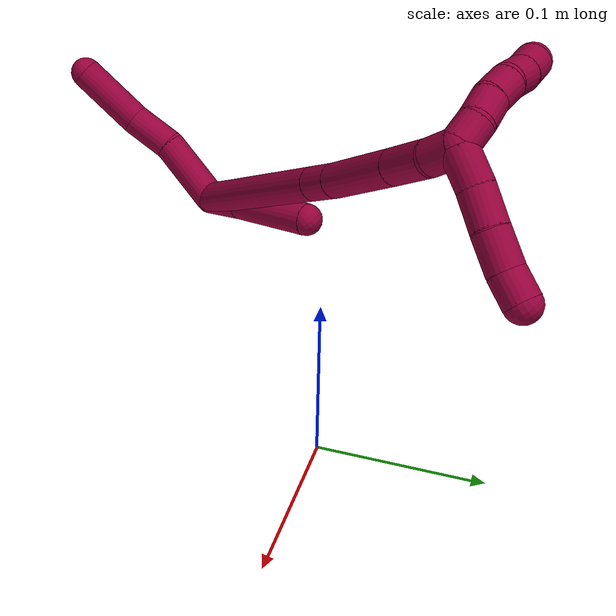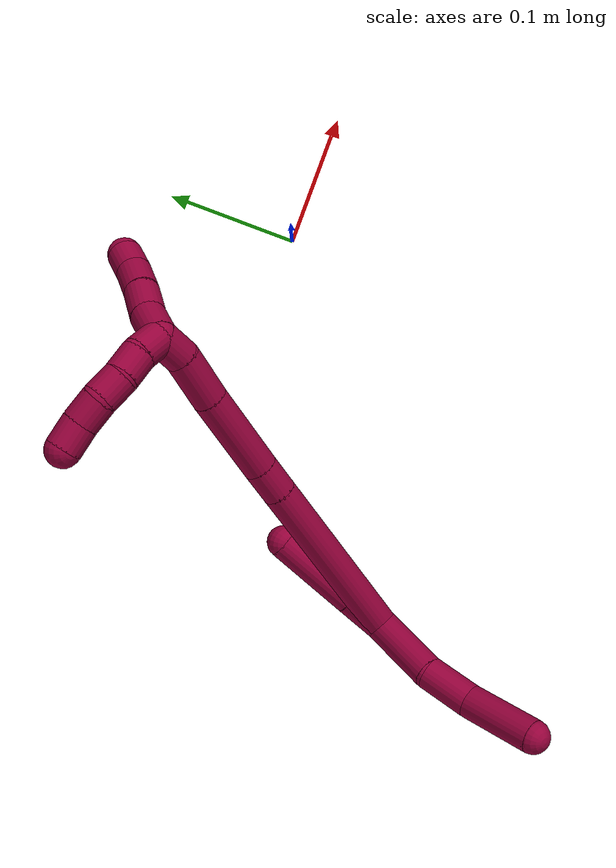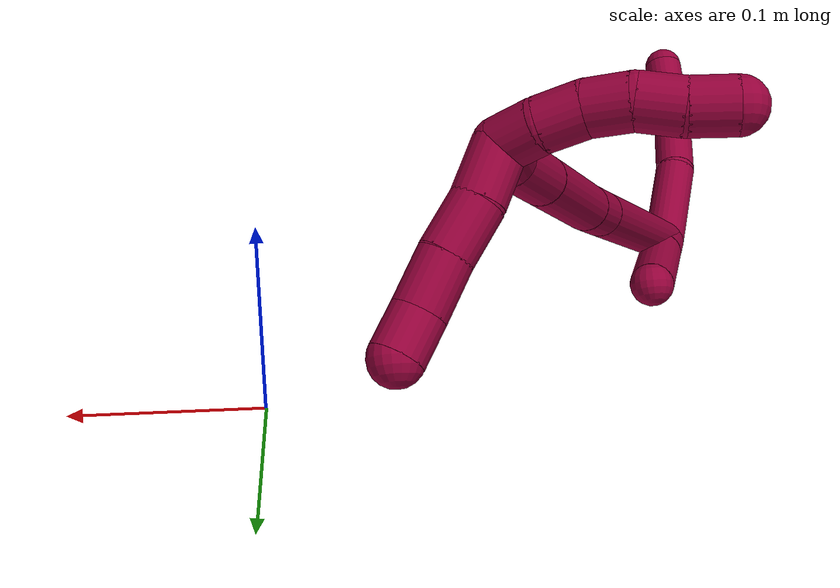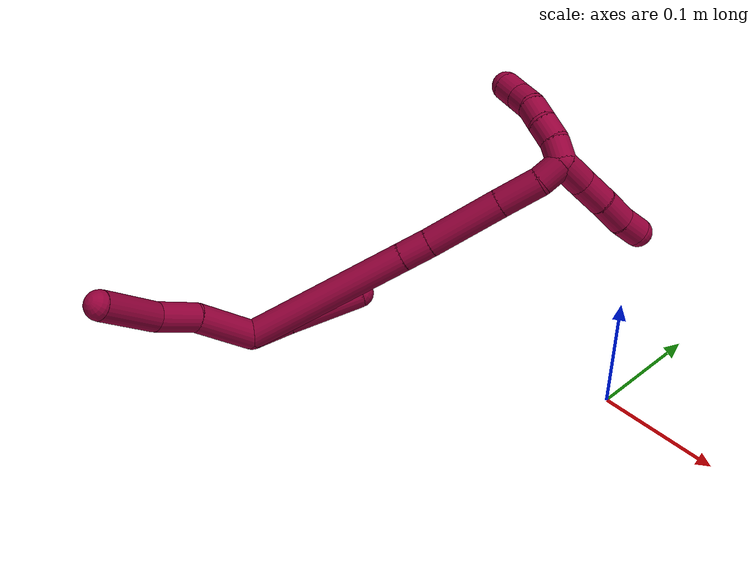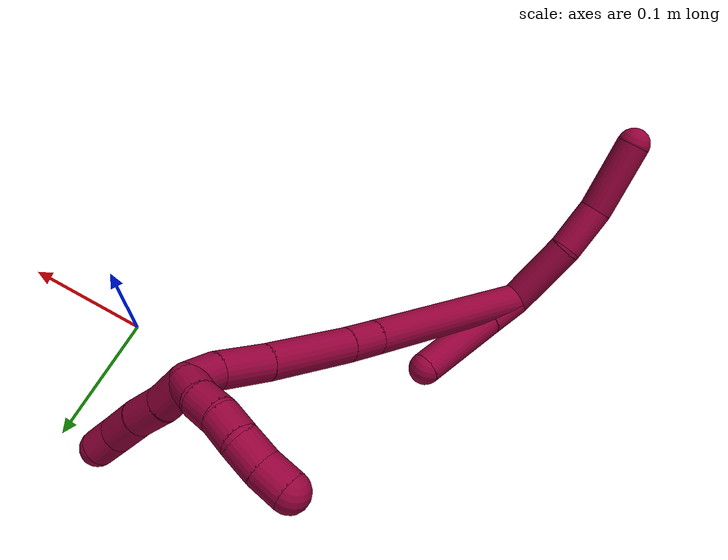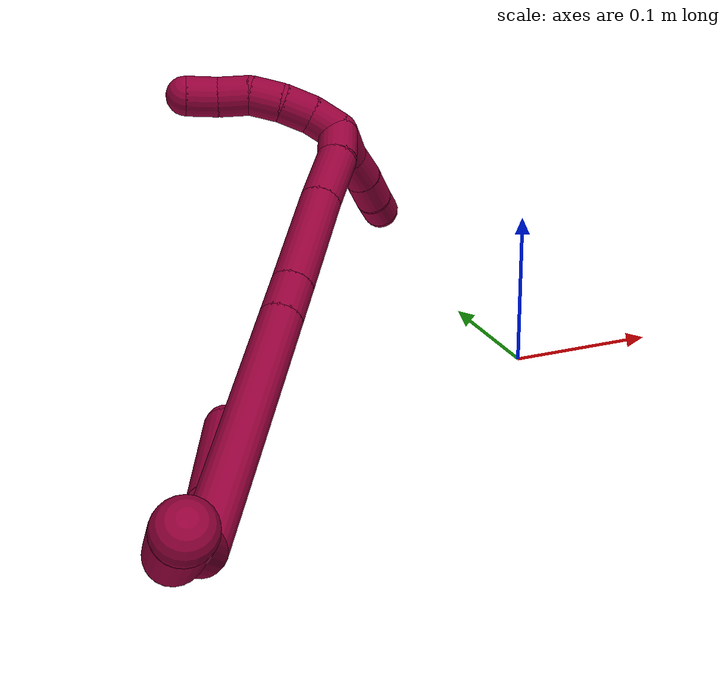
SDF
<sdf version="1.7">
 <world name="default">
  <model name="8">
   <static>0</static>
   <link name="8">
    <collision name="collision-cylinder-e_1_2_8">
     <pose>-0.007567 -0.007407 0.026267 0.274851 -0.27046 -0.037629</pose>
     <geometry><cylinder><radius>0.0125</radius><length>0.056641</length></cylinder></geometry>
     <surface>
      <friction><ode><mu>1.16</mu><mu2>1.16</mu2><slip1>0</slip1><slip2>0</slip2></ode></friction>
      <contact><ode><kp>1e+06</kp><kd>1</kd><max_vel>0</max_vel><min_depth>0.001</min_depth></ode></contact>
     </surface>
    </collision>
    <visual name="visual-cylinder-e_1_2_8">
     <pose>-0.007567 -0.007407 0.026267 0.274851 -0.27046 -0.037629</pose>
     <geometry><cylinder><radius>0.0125</radius><length>0.056641</length></cylinder></geometry>
     <material><ambient>0.584314 0 0.227451 1</ambient></material>
    </visual>
    <collision name="collision-cylinder-e_2_8_9">
     <pose>-0.017256 -0.023341 0.06897 0.478572 -0.114136 -0.027873</pose>
     <geometry><cylinder><radius>0.0125</radius><length>0.037276</length></cylinder></geometry>
     <surface>
      <friction><ode><mu>1.16</mu><mu2>1.16</mu2><slip1>0</slip1><slip2>0</slip2></ode></friction>
      <contact><ode><kp>1e+06</kp><kd>1</kd><max_vel>0</max_vel><min_depth>0.001</min_depth></ode></contact>
     </surface>
    </collision>
    <visual name="visual-cylinder-e_2_8_9">
     <pose>-0.017256 -0.023341 0.06897 0.478572 -0.114136 -0.027873</pose>
     <geometry><cylinder><radius>0.0125</radius><length>0.037276</length></cylinder></geometry>
     <material><ambient>0.584314 0 0.227451 1</ambient></material>
    </visual>
    <collision name="collision-cylinder-e_3_9_6">
     <pose>-0.019877 -0.038018 0.112761 0.221155 -0.01777 -0.001973</pose>
     <geometry><cylinder><radius>0.0125</radius><length>0.056083</length></cylinder></geometry>
     <surface>
      <friction><ode><mu>1.16</mu><mu2>1.16</mu2><slip1>0</slip1><slip2>0</slip2></ode></friction>
      <contact><ode><kp>1e+06</kp><kd>1</kd><max_vel>0</max_vel><min_depth>0.001</min_depth></ode></contact>
     </surface>
    </collision>
    <visual name="visual-cylinder-e_3_9_6">
     <pose>-0.019877 -0.038018 0.112761 0.221155 -0.01777 -0.001973</pose>
     <geometry><cylinder><radius>0.0125</radius><length>0.056083</length></cylinder></geometry>
     <material><ambient>0.584314 0 0.227451 1</ambient></material>
    </visual>
    <collision name="collision-cylinder-e_1_2_10">
     <pose>0.003155 0.014571 -0.007048 -2.02133 0.192523 -0.305542</pose>
     <geometry><cylinder><radius>0.0125</radius><length>0.032982</length></cylinder></geometry>
     <surface>
      <friction><ode><mu>1.16</mu><mu2>1.16</mu2><slip1>0</slip1><slip2>0</slip2></ode></friction>
      <contact><ode><kp>1e+06</kp><kd>1</kd><max_vel>0</max_vel><min_depth>0.001</min_depth></ode></contact>
     </surface>
    </collision>
    <visual name="visual-cylinder-e_1_2_10">
     <pose>0.003155 0.014571 -0.007048 -2.02133 0.192523 -0.305542</pose>
     <geometry><cylinder><radius>0.0125</radius><length>0.032982</length></cylinder></geometry>
     <material><ambient>0.584314 0 0.227451 1</ambient></material>
    </visual>
    <collision name="collision-cylinder-e_2_10_5">
     <pose>0.012994 0.057954 -0.029847 -2.07108 0.200782 -0.336518</pose>
     <geometry><cylinder><radius>0.0125</radius><length>0.067018</length></cylinder></geometry>
     <surface>
      <friction><ode><mu>1.16</mu><mu2>1.16</mu2><slip1>0</slip1><slip2>0</slip2></ode></friction>
      <contact><ode><kp>1e+06</kp><kd>1</kd><max_vel>0</max_vel><min_depth>0.001</min_depth></ode></contact>
     </surface>
    </collision>
    <visual name="visual-cylinder-e_2_10_5">
     <pose>0.012994 0.057954 -0.029847 -2.07108 0.200782 -0.336518</pose>
     <geometry><cylinder><radius>0.0125</radius><length>0.067018</length></cylinder></geometry>
     <material><ambient>0.584314 0 0.227451 1</ambient></material>
    </visual>
    <collision name="collision-cylinder-e_1_2_11">
     <pose>0.023809 0.069088 -0.007165 -1.67413 0.330225 -0.365484</pose>
     <geometry><cylinder><radius>0.0125</radius><length>0.146852</length></cylinder></geometry>
     <surface>
      <friction><ode><mu>1.16</mu><mu2>1.16</mu2><slip1>0</slip1><slip2>0</slip2></ode></friction>
      <contact><ode><kp>1e+06</kp><kd>1</kd><max_vel>0</max_vel><min_depth>0.001</min_depth></ode></contact>
     </surface>
    </collision>
    <visual name="visual-cylinder-e_1_2_11">
     <pose>0.023809 0.069088 -0.007165 -1.67413 0.330225 -0.365484</pose>
     <geometry><cylinder><radius>0.0125</radius><length>0.146852</length></cylinder></geometry>
     <material><ambient>0.584314 0 0.227451 1</ambient></material>
    </visual>
    <collision name="collision-cylinder-e_2_11_12">
     <pose>0.051775 0.150197 -0.015526 -1.66996 0.331449 -0.36533</pose>
     <geometry><cylinder><radius>0.0125</radius><length>0.025551</length></cylinder></geometry>
     <surface>
      <friction><ode><mu>1.16</mu><mu2>1.16</mu2><slip1>0</slip1><slip2>0</slip2></ode></friction>
      <contact><ode><kp>1e+06</kp><kd>1</kd><max_vel>0</max_vel><min_depth>0.001</min_depth></ode></contact>
     </surface>
    </collision>
    <visual name="visual-cylinder-e_2_11_12">
     <pose>0.051775 0.150197 -0.015526 -1.66996 0.331449 -0.36533</pose>
     <geometry><cylinder><radius>0.0125</radius><length>0.025551</length></cylinder></geometry>
     <material><ambient>0.584314 0 0.227451 1</ambient></material>
    </visual>
    <collision name="collision-cylinder-e_3_12_13">
     <pose>0.066832 0.194006 -0.018013 -1.61141 0.330066 -0.343488</pose>
     <geometry><cylinder><radius>0.0125</radius><length>0.067259</length></cylinder></geometry>
     <surface>
      <friction><ode><mu>1.16</mu><mu2>1.16</mu2><slip1>0</slip1><slip2>0</slip2></ode></friction>
      <contact><ode><kp>1e+06</kp><kd>1</kd><max_vel>0</max_vel><min_depth>0.001</min_depth></ode></contact>
     </surface>
    </collision>
    <visual name="visual-cylinder-e_3_12_13">
     <pose>0.066832 0.194006 -0.018013 -1.61141 0.330066 -0.343488</pose>
     <geometry><cylinder><radius>0.0125</radius><length>0.067259</length></cylinder></geometry>
     <material><ambient>0.584314 0 0.227451 1</ambient></material>
    </visual>
    <collision name="collision-cylinder-e_4_13_14">
     <pose>0.084418 0.243386 -0.01951 -1.58247 0.363196 -0.367366</pose>
     <geometry><cylinder><radius>0.0125</radius><length>0.037644</length></cylinder></geometry>
     <surface>
      <friction><ode><mu>1.16</mu><mu2>1.16</mu2><slip1>0</slip1><slip2>0</slip2></ode></friction>
      <contact><ode><kp>1e+06</kp><kd>1</kd><max_vel>0</max_vel><min_depth>0.001</min_depth></ode></contact>
     </surface>
    </collision>
    <visual name="visual-cylinder-e_4_13_14">
     <pose>0.084418 0.243386 -0.01951 -1.58247 0.363196 -0.367366</pose>
     <geometry><cylinder><radius>0.0125</radius><length>0.037644</length></cylinder></geometry>
     <material><ambient>0.584314 0 0.227451 1</ambient></material>
    </visual>
    <collision name="collision-cylinder-e_5_14_1">
     <pose>0.092507 0.272238 -0.019883 -1.5857 0.123932 -0.125788</pose>
     <geometry><cylinder><radius>0.0125</radius><length>0.022695</length></cylinder></geometry>
     <surface>
      <friction><ode><mu>1.16</mu><mu2>1.16</mu2><slip1>0</slip1><slip2>0</slip2></ode></friction>
      <contact><ode><kp>1e+06</kp><kd>1</kd><max_vel>0</max_vel><min_depth>0.001</min_depth></ode></contact>
     </surface>
    </collision>
    <visual name="visual-cylinder-e_5_14_1">
     <pose>0.092507 0.272238 -0.019883 -1.5857 0.123932 -0.125788</pose>
     <geometry><cylinder><radius>0.0125</radius><length>0.022695</length></cylinder></geometry>
     <material><ambient>0.584314 0 0.227451 1</ambient></material>
    </visual>
    <collision name="collision-cylinder-e_1_1_15">
     <pose>0.099606 0.284077 -0.032134 -3.09371 0.440098 -2.92827</pose>
     <geometry><cylinder><radius>0.0125</radius><length>0.026742</length></cylinder></geometry>
     <surface>
      <friction><ode><mu>1.16</mu><mu2>1.16</mu2><slip1>0</slip1><slip2>0</slip2></ode></friction>
      <contact><ode><kp>1e+06</kp><kd>1</kd><max_vel>0</max_vel><min_depth>0.001</min_depth></ode></contact>
     </surface>
    </collision>
    <visual name="visual-cylinder-e_1_1_15">
     <pose>0.099606 0.284077 -0.032134 -3.09371 0.440098 -2.92827</pose>
     <geometry><cylinder><radius>0.0125</radius><length>0.026742</length></cylinder></geometry>
     <material><ambient>0.584314 0 0.227451 1</ambient></material>
    </visual>
    <collision name="collision-cylinder-e_2_15_16">
     <pose>0.112741 0.285239 -0.055171 -3.08834 0.595894 -2.96857</pose>
     <geometry><cylinder><radius>0.0125</radius><length>0.026507</length></cylinder></geometry>
     <surface>
      <friction><ode><mu>1.16</mu><mu2>1.16</mu2><slip1>0</slip1><slip2>0</slip2></ode></friction>
      <contact><ode><kp>1e+06</kp><kd>1</kd><max_vel>0</max_vel><min_depth>0.001</min_depth></ode></contact>
     </surface>
    </collision>
    <visual name="visual-cylinder-e_2_15_16">
     <pose>0.112741 0.285239 -0.055171 -3.08834 0.595894 -2.96857</pose>
     <geometry><cylinder><radius>0.0125</radius><length>0.026507</length></cylinder></geometry>
     <material><ambient>0.584314 0 0.227451 1</ambient></material>
    </visual>
    <collision name="collision-cylinder-e_3_16_17">
     <pose>0.126529 0.286127 -0.0775 -3.11489 0.508927 -3.039</pose>
     <geometry><cylinder><radius>0.0125</radius><length>0.026062</length></cylinder></geometry>
     <surface>
      <friction><ode><mu>1.16</mu><mu2>1.16</mu2><slip1>0</slip1><slip2>0</slip2></ode></friction>
      <contact><ode><kp>1e+06</kp><kd>1</kd><max_vel>0</max_vel><min_depth>0.001</min_depth></ode></contact>
     </surface>
    </collision>
    <visual name="visual-cylinder-e_3_16_17">
     <pose>0.126529 0.286127 -0.0775 -3.11489 0.508927 -3.039</pose>
     <geometry><cylinder><radius>0.0125</radius><length>0.026062</length></cylinder></geometry>
     <material><ambient>0.584314 0 0.227451 1</ambient></material>
    </visual>
    <collision name="collision-cylinder-e_4_17_4">
     <pose>0.137801 0.288094 -0.09782 -2.95774 0.496003 -2.44329</pose>
     <geometry><cylinder><radius>0.0125</radius><length>0.020689</length></cylinder></geometry>
     <surface>
      <friction><ode><mu>1.16</mu><mu2>1.16</mu2><slip1>0</slip1><slip2>0</slip2></ode></friction>
      <contact><ode><kp>1e+06</kp><kd>1</kd><max_vel>0</max_vel><min_depth>0.001</min_depth></ode></contact>
     </surface>
    </collision>
    <visual name="visual-cylinder-e_4_17_4">
     <pose>0.137801 0.288094 -0.09782 -2.95774 0.496003 -2.44329</pose>
     <geometry><cylinder><radius>0.0125</radius><length>0.020689</length></cylinder></geometry>
     <material><ambient>0.584314 0 0.227451 1</ambient></material>
    </visual>
    <collision name="collision-cylinder-e_1_1_18">
     <pose>0.085277 0.288254 -0.018366 -1.23038 -1.04184 0.770444</pose>
     <geometry><cylinder><radius>0.0125</radius><length>0.02</length></cylinder></geometry>
     <surface>
      <friction><ode><mu>1.16</mu><mu2>1.16</mu2><slip1>0</slip1><slip2>0</slip2></ode></friction>
      <contact><ode><kp>1e+06</kp><kd>1</kd><max_vel>0</max_vel><min_depth>0.001</min_depth></ode></contact>
     </surface>
    </collision>
    <visual name="visual-cylinder-e_1_1_18">
     <pose>0.085277 0.288254 -0.018366 -1.23038 -1.04184 0.770444</pose>
     <geometry><cylinder><radius>0.0125</radius><length>0.02</length></cylinder></geometry>
     <material><ambient>0.584314 0 0.227451 1</ambient></material>
    </visual>
    <collision name="collision-cylinder-e_2_18_19">
     <pose>0.067092 0.295504 -0.015083 -1.00068 -1.27008 0.765966</pose>
     <geometry><cylinder><radius>0.0125</radius><length>0.02</length></cylinder></geometry>
     <surface>
      <friction><ode><mu>1.16</mu><mu2>1.16</mu2><slip1>0</slip1><slip2>0</slip2></ode></friction>
      <contact><ode><kp>1e+06</kp><kd>1</kd><max_vel>0</max_vel><min_depth>0.001</min_depth></ode></contact>
     </surface>
    </collision>
    <visual name="visual-cylinder-e_2_18_19">
     <pose>0.067092 0.295504 -0.015083 -1.00068 -1.27008 0.765966</pose>
     <geometry><cylinder><radius>0.0125</radius><length>0.02</length></cylinder></geometry>
     <material><ambient>0.584314 0 0.227451 1</ambient></material>
    </visual>
    <collision name="collision-cylinder-e_3_19_20">
     <pose>0.047895 0.30058 -0.014027 -1.77797 -1.30378 1.50926</pose>
     <geometry><cylinder><radius>0.0125</radius><length>0.02</length></cylinder></geometry>
     <surface>
      <friction><ode><mu>1.16</mu><mu2>1.16</mu2><slip1>0</slip1><slip2>0</slip2></ode></friction>
      <contact><ode><kp>1e+06</kp><kd>1</kd><max_vel>0</max_vel><min_depth>0.001</min_depth></ode></contact>
     </surface>
    </collision>
    <visual name="visual-cylinder-e_3_19_20">
     <pose>0.047895 0.30058 -0.014027 -1.77797 -1.30378 1.50926</pose>
     <geometry><cylinder><radius>0.0125</radius><length>0.02</length></cylinder></geometry>
     <material><ambient>0.584314 0 0.227451 1</ambient></material>
    </visual>
    <collision name="collision-cylinder-e_4_20_21">
     <pose>0.02858 0.303564 -0.017088 -2.98347 -1.31297 2.93666</pose>
     <geometry><cylinder><radius>0.0125</radius><length>0.02</length></cylinder></geometry>
     <surface>
      <friction><ode><mu>1.16</mu><mu2>1.16</mu2><slip1>0</slip1><slip2>0</slip2></ode></friction>
      <contact><ode><kp>1e+06</kp><kd>1</kd><max_vel>0</max_vel><min_depth>0.001</min_depth></ode></contact>
     </surface>
    </collision>
    <visual name="visual-cylinder-e_4_20_21">
     <pose>0.02858 0.303564 -0.017088 -2.98347 -1.31297 2.93666</pose>
     <geometry><cylinder><radius>0.0125</radius><length>0.02</length></cylinder></geometry>
     <material><ambient>0.584314 0 0.227451 1</ambient></material>
    </visual>
    <collision name="collision-cylinder-e_5_21_3">
     <pose>0.008959 0.304152 -0.020573 -2.95074 -1.47206 2.93104</pose>
     <geometry><cylinder><radius>0.0125</radius><length>0.02</length></cylinder></geometry>
     <surface>
      <friction><ode><mu>1.16</mu><mu2>1.16</mu2><slip1>0</slip1><slip2>0</slip2></ode></friction>
      <contact><ode><kp>1e+06</kp><kd>1</kd><max_vel>0</max_vel><min_depth>0.001</min_depth></ode></contact>
     </surface>
    </collision>
    <visual name="visual-cylinder-e_5_21_3">
     <pose>0.008959 0.304152 -0.020573 -2.95074 -1.47206 2.93104</pose>
     <geometry><cylinder><radius>0.0125</radius><length>0.02</length></cylinder></geometry>
     <material><ambient>0.584314 0 0.227451 1</ambient></material>
    </visual>
    <collision name="collision-sphere-3">
     <pose>-0.000992 0.304339 -0.021541 0 -0 0</pose>
     <geometry><sphere><radius>0.0125</radius></sphere></geometry>
     <surface>
      <friction><ode><mu>1.16</mu><mu2>1.16</mu2><slip1>0</slip1><slip2>0</slip2></ode></friction>
      <contact><ode><kp>1e+06</kp><kd>1</kd><max_vel>0</max_vel><min_depth>0.001</min_depth></ode></contact>
     </surface>
    </collision>
    <visual name="visual-sphere-3">
     <pose>-0.000992 0.304339 -0.021541 0 -0 0</pose>
     <geometry><sphere><radius>0.0125</radius></sphere></geometry>
     <material><ambient>0.584314 0 0.227451 1</ambient></material>
    </visual>
    <collision name="collision-sphere-21">
     <pose>0.018911 0.303965 -0.019606 0 -0 0</pose>
     <geometry><sphere><radius>0.0125</radius></sphere></geometry>
     <surface>
      <friction><ode><mu>1.16</mu><mu2>1.16</mu2><slip1>0</slip1><slip2>0</slip2></ode></friction>
      <contact><ode><kp>1e+06</kp><kd>1</kd><max_vel>0</max_vel><min_depth>0.001</min_depth></ode></contact>
     </surface>
    </collision>
    <visual name="visual-sphere-21">
     <pose>0.018911 0.303965 -0.019606 0 -0 0</pose>
     <geometry><sphere><radius>0.0125</radius></sphere></geometry>
     <material><ambient>0.584314 0 0.227451 1</ambient></material>
    </visual>
    <collision name="collision-sphere-20">
     <pose>0.03825 0.303162 -0.01457 0 -0 0</pose>
     <geometry><sphere><radius>0.0125</radius></sphere></geometry>
     <surface>
      <friction><ode><mu>1.16</mu><mu2>1.16</mu2><slip1>0</slip1><slip2>0</slip2></ode></friction>
      <contact><ode><kp>1e+06</kp><kd>1</kd><max_vel>0</max_vel><min_depth>0.001</min_depth></ode></contact>
     </surface>
    </collision>
    <visual name="visual-sphere-20">
     <pose>0.03825 0.303162 -0.01457 0 -0 0</pose>
     <geometry><sphere><radius>0.0125</radius></sphere></geometry>
     <material><ambient>0.584314 0 0.227451 1</ambient></material>
    </visual>
    <collision name="collision-sphere-19">
     <pose>0.057541 0.297998 -0.013484 0 -0 0</pose>
     <geometry><sphere><radius>0.0125</radius></sphere></geometry>
     <surface>
      <friction><ode><mu>1.16</mu><mu2>1.16</mu2><slip1>0</slip1><slip2>0</slip2></ode></friction>
      <contact><ode><kp>1e+06</kp><kd>1</kd><max_vel>0</max_vel><min_depth>0.001</min_depth></ode></contact>
     </surface>
    </collision>
    <visual name="visual-sphere-19">
     <pose>0.057541 0.297998 -0.013484 0 -0 0</pose>
     <geometry><sphere><radius>0.0125</radius></sphere></geometry>
     <material><ambient>0.584314 0 0.227451 1</ambient></material>
    </visual>
    <collision name="collision-sphere-5">
     <pose>0.019676 0.086766 -0.045598 0 -0 0</pose>
     <geometry><sphere><radius>0.0125</radius></sphere></geometry>
     <surface>
      <friction><ode><mu>1.16</mu><mu2>1.16</mu2><slip1>0</slip1><slip2>0</slip2></ode></friction>
      <contact><ode><kp>1e+06</kp><kd>1</kd><max_vel>0</max_vel><min_depth>0.001</min_depth></ode></contact>
     </surface>
    </collision>
    <visual name="visual-sphere-5">
     <pose>0.019676 0.086766 -0.045598 0 -0 0</pose>
     <geometry><sphere><radius>0.0125</radius></sphere></geometry>
     <material><ambient>0.584314 0 0.227451 1</ambient></material>
    </visual>
    <collision name="collision-sphere-10">
     <pose>0.006311 0.029142 -0.014097 0 -0 0</pose>
     <geometry><sphere><radius>0.0125</radius></sphere></geometry>
     <surface>
      <friction><ode><mu>1.16</mu><mu2>1.16</mu2><slip1>0</slip1><slip2>0</slip2></ode></friction>
      <contact><ode><kp>1e+06</kp><kd>1</kd><max_vel>0</max_vel><min_depth>0.001</min_depth></ode></contact>
     </surface>
    </collision>
    <visual name="visual-sphere-10">
     <pose>0.006311 0.029142 -0.014097 0 -0 0</pose>
     <geometry><sphere><radius>0.0125</radius></sphere></geometry>
     <material><ambient>0.584314 0 0.227451 1</ambient></material>
    </visual>
    <collision name="collision-sphere-6">
     <pose>-0.020375 -0.044168 0.140115 0 -0 0</pose>
     <geometry><sphere><radius>0.0125</radius></sphere></geometry>
     <surface>
      <friction><ode><mu>1.16</mu><mu2>1.16</mu2><slip1>0</slip1><slip2>0</slip2></ode></friction>
      <contact><ode><kp>1e+06</kp><kd>1</kd><max_vel>0</max_vel><min_depth>0.001</min_depth></ode></contact>
     </surface>
    </collision>
    <visual name="visual-sphere-6">
     <pose>-0.020375 -0.044168 0.140115 0 -0 0</pose>
     <geometry><sphere><radius>0.0125</radius></sphere></geometry>
     <material><ambient>0.584314 0 0.227451 1</ambient></material>
    </visual>
    <collision name="collision-sphere-9">
     <pose>-0.019378 -0.031868 0.085406 0 -0 0</pose>
     <geometry><sphere><radius>0.0125</radius></sphere></geometry>
     <surface>
      <friction><ode><mu>1.16</mu><mu2>1.16</mu2><slip1>0</slip1><slip2>0</slip2></ode></friction>
      <contact><ode><kp>1e+06</kp><kd>1</kd><max_vel>0</max_vel><min_depth>0.001</min_depth></ode></contact>
     </surface>
    </collision>
    <visual name="visual-sphere-9">
     <pose>-0.019378 -0.031868 0.085406 0 -0 0</pose>
     <geometry><sphere><radius>0.0125</radius></sphere></geometry>
     <material><ambient>0.584314 0 0.227451 1</ambient></material>
    </visual>
    <collision name="collision-sphere-2">
     <geometry><sphere><radius>0.0125</radius></sphere></geometry>
     <surface>
      <friction><ode><mu>1.16</mu><mu2>1.16</mu2><slip1>0</slip1><slip2>0</slip2></ode></friction>
      <contact><ode><kp>1e+06</kp><kd>1</kd><max_vel>0</max_vel><min_depth>0.001</min_depth></ode></contact>
     </surface>
    </collision>
    <visual name="visual-sphere-2">
     <geometry><sphere><radius>0.0125</radius></sphere></geometry>
     <material><ambient>0.584314 0 0.227451 1</ambient></material>
    </visual>
    <collision name="collision-sphere-8">
     <pose>-0.015133 -0.014814 0.052533 0 -0 0</pose>
     <geometry><sphere><radius>0.0125</radius></sphere></geometry>
     <surface>
      <friction><ode><mu>1.16</mu><mu2>1.16</mu2><slip1>0</slip1><slip2>0</slip2></ode></friction>
      <contact><ode><kp>1e+06</kp><kd>1</kd><max_vel>0</max_vel><min_depth>0.001</min_depth></ode></contact>
     </surface>
    </collision>
    <visual name="visual-sphere-8">
     <pose>-0.015133 -0.014814 0.052533 0 -0 0</pose>
     <geometry><sphere><radius>0.0125</radius></sphere></geometry>
     <material><ambient>0.584314 0 0.227451 1</ambient></material>
    </visual>
    <collision name="collision-sphere-11">
     <pose>0.047617 0.138176 -0.01433 0 -0 0</pose>
     <geometry><sphere><radius>0.0125</radius></sphere></geometry>
     <surface>
      <friction><ode><mu>1.16</mu><mu2>1.16</mu2><slip1>0</slip1><slip2>0</slip2></ode></friction>
      <contact><ode><kp>1e+06</kp><kd>1</kd><max_vel>0</max_vel><min_depth>0.001</min_depth></ode></contact>
     </surface>
    </collision>
    <visual name="visual-sphere-11">
     <pose>0.047617 0.138176 -0.01433 0 -0 0</pose>
     <geometry><sphere><radius>0.0125</radius></sphere></geometry>
     <material><ambient>0.584314 0 0.227451 1</ambient></material>
    </visual>
    <collision name="collision-sphere-12">
     <pose>0.055932 0.162218 -0.016722 0 -0 0</pose>
     <geometry><sphere><radius>0.0125</radius></sphere></geometry>
     <surface>
      <friction><ode><mu>1.16</mu><mu2>1.16</mu2><slip1>0</slip1><slip2>0</slip2></ode></friction>
      <contact><ode><kp>1e+06</kp><kd>1</kd><max_vel>0</max_vel><min_depth>0.001</min_depth></ode></contact>
     </surface>
    </collision>
    <visual name="visual-sphere-12">
     <pose>0.055932 0.162218 -0.016722 0 -0 0</pose>
     <geometry><sphere><radius>0.0125</radius></sphere></geometry>
     <material><ambient>0.584314 0 0.227451 1</ambient></material>
    </visual>
    <collision name="collision-sphere-13">
     <pose>0.077731 0.225793 -0.019305 0 -0 0</pose>
     <geometry><sphere><radius>0.0125</radius></sphere></geometry>
     <surface>
      <friction><ode><mu>1.16</mu><mu2>1.16</mu2><slip1>0</slip1><slip2>0</slip2></ode></friction>
      <contact><ode><kp>1e+06</kp><kd>1</kd><max_vel>0</max_vel><min_depth>0.001</min_depth></ode></contact>
     </surface>
    </collision>
    <visual name="visual-sphere-13">
     <pose>0.077731 0.225793 -0.019305 0 -0 0</pose>
     <geometry><sphere><radius>0.0125</radius></sphere></geometry>
     <material><ambient>0.584314 0 0.227451 1</ambient></material>
    </visual>
    <collision name="collision-sphere-14">
     <pose>0.091105 0.260979 -0.019716 0 -0 0</pose>
     <geometry><sphere><radius>0.0125</radius></sphere></geometry>
     <surface>
      <friction><ode><mu>1.16</mu><mu2>1.16</mu2><slip1>0</slip1><slip2>0</slip2></ode></friction>
      <contact><ode><kp>1e+06</kp><kd>1</kd><max_vel>0</max_vel><min_depth>0.001</min_depth></ode></contact>
     </surface>
    </collision>
    <visual name="visual-sphere-14">
     <pose>0.091105 0.260979 -0.019716 0 -0 0</pose>
     <geometry><sphere><radius>0.0125</radius></sphere></geometry>
     <material><ambient>0.584314 0 0.227451 1</ambient></material>
    </visual>
    <collision name="collision-sphere-1">
     <pose>0.09391 0.283497 -0.020051 0 -0 0</pose>
     <geometry><sphere><radius>0.0125</radius></sphere></geometry>
     <surface>
      <friction><ode><mu>1.16</mu><mu2>1.16</mu2><slip1>0</slip1><slip2>0</slip2></ode></friction>
      <contact><ode><kp>1e+06</kp><kd>1</kd><max_vel>0</max_vel><min_depth>0.001</min_depth></ode></contact>
     </surface>
    </collision>
    <visual name="visual-sphere-1">
     <pose>0.09391 0.283497 -0.020051 0 -0 0</pose>
     <geometry><sphere><radius>0.0125</radius></sphere></geometry>
     <material><ambient>0.584314 0 0.227451 1</ambient></material>
    </visual>
    <collision name="collision-sphere-18">
     <pose>0.076643 0.293011 -0.016682 0 -0 0</pose>
     <geometry><sphere><radius>0.0125</radius></sphere></geometry>
     <surface>
      <friction><ode><mu>1.16</mu><mu2>1.16</mu2><slip1>0</slip1><slip2>0</slip2></ode></friction>
      <contact><ode><kp>1e+06</kp><kd>1</kd><max_vel>0</max_vel><min_depth>0.001</min_depth></ode></contact>
     </surface>
    </collision>
    <visual name="visual-sphere-18">
     <pose>0.076643 0.293011 -0.016682 0 -0 0</pose>
     <geometry><sphere><radius>0.0125</radius></sphere></geometry>
     <material><ambient>0.584314 0 0.227451 1</ambient></material>
    </visual>
    <collision name="collision-sphere-15">
     <pose>0.105303 0.284656 -0.044217 0 -0 0</pose>
     <geometry><sphere><radius>0.0125</radius></sphere></geometry>
     <surface>
      <friction><ode><mu>1.16</mu><mu2>1.16</mu2><slip1>0</slip1><slip2>0</slip2></ode></friction>
      <contact><ode><kp>1e+06</kp><kd>1</kd><max_vel>0</max_vel><min_depth>0.001</min_depth></ode></contact>
     </surface>
    </collision>
    <visual name="visual-sphere-15">
     <pose>0.105303 0.284656 -0.044217 0 -0 0</pose>
     <geometry><sphere><radius>0.0125</radius></sphere></geometry>
     <material><ambient>0.584314 0 0.227451 1</ambient></material>
    </visual>
    <collision name="collision-sphere-16">
     <pose>0.12018 0.285823 -0.066124 0 -0 0</pose>
     <geometry><sphere><radius>0.0125</radius></sphere></geometry>
     <surface>
      <friction><ode><mu>1.16</mu><mu2>1.16</mu2><slip1>0</slip1><slip2>0</slip2></ode></friction>
      <contact><ode><kp>1e+06</kp><kd>1</kd><max_vel>0</max_vel><min_depth>0.001</min_depth></ode></contact>
     </surface>
    </collision>
    <visual name="visual-sphere-16">
     <pose>0.12018 0.285823 -0.066124 0 -0 0</pose>
     <geometry><sphere><radius>0.0125</radius></sphere></geometry>
     <material><ambient>0.584314 0 0.227451 1</ambient></material>
    </visual>
    <collision name="collision-sphere-17">
     <pose>0.132878 0.286431 -0.088876 0 -0 0</pose>
     <geometry><sphere><radius>0.0125</radius></sphere></geometry>
     <surface>
      <friction><ode><mu>1.16</mu><mu2>1.16</mu2><slip1>0</slip1><slip2>0</slip2></ode></friction>
      <contact><ode><kp>1e+06</kp><kd>1</kd><max_vel>0</max_vel><min_depth>0.001</min_depth></ode></contact>
     </surface>
    </collision>
    <visual name="visual-sphere-17">
     <pose>0.132878 0.286431 -0.088876 0 -0 0</pose>
     <geometry><sphere><radius>0.0125</radius></sphere></geometry>
     <material><ambient>0.584314 0 0.227451 1</ambient></material>
    </visual>
    <collision name="collision-sphere-4">
     <pose>0.142724 0.289758 -0.106765 0 -0 0</pose>
     <geometry><sphere><radius>0.0125</radius></sphere></geometry>
     <surface>
      <friction><ode><mu>1.16</mu><mu2>1.16</mu2><slip1>0</slip1><slip2>0</slip2></ode></friction>
      <contact><ode><kp>1e+06</kp><kd>1</kd><max_vel>0</max_vel><min_depth>0.001</min_depth></ode></contact>
     </surface>
    </collision>
    <visual name="visual-sphere-4">
     <pose>0.142724 0.289758 -0.106765 0 -0 0</pose>
     <geometry><sphere><radius>0.0125</radius></sphere></geometry>
     <material><ambient>0.584314 0 0.227451 1</ambient></material>
    </visual>
    <inertial>
     <pose>0.039915 0.135642 -0.005019 0 -0 0</pose>
     <mass>0.75</mass>
     <inertia>
      <ixx>0.000223</ixx>
      <ixy>0</ixy>
      <ixz>0</ixz>
      <iyy>-3.8e-05</iyy>
      <iyz>0</iyz>
      <izz>-0.000408</izz>
     </inertia>
    </inertial>
   </link>
   <pose>-0.252919 -0.167005 0.011678 0.661297 0.133266 -0.136209</pose>
  </model>
 </world>
</sdf>
